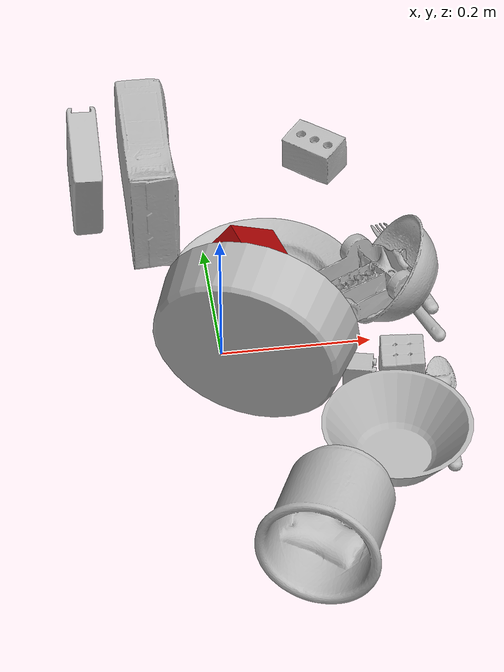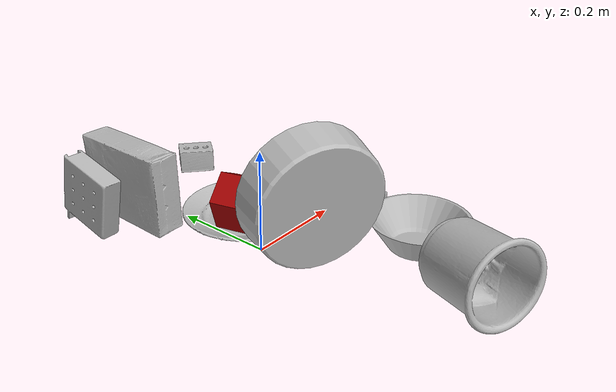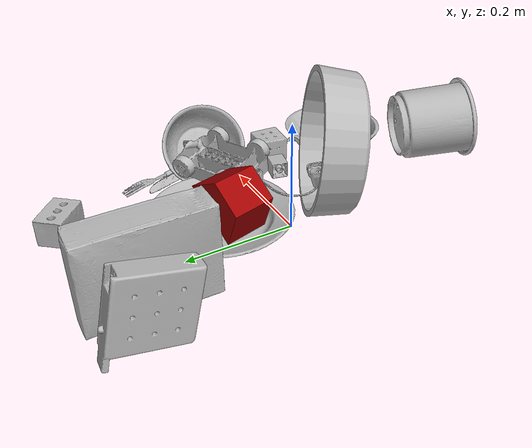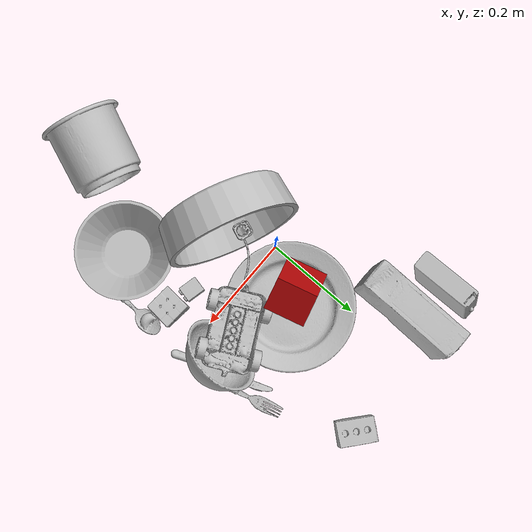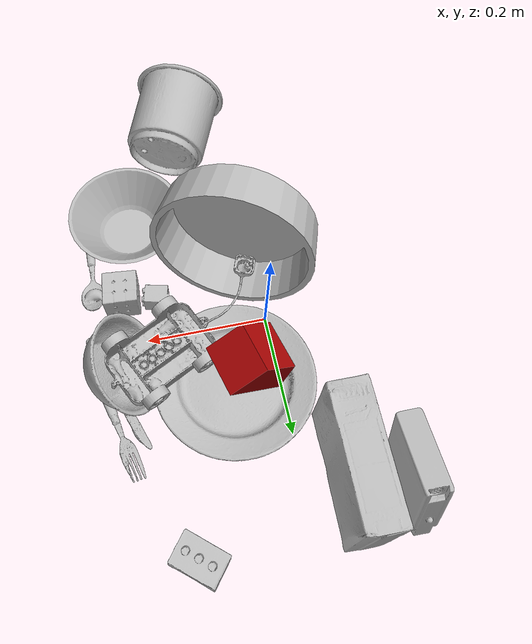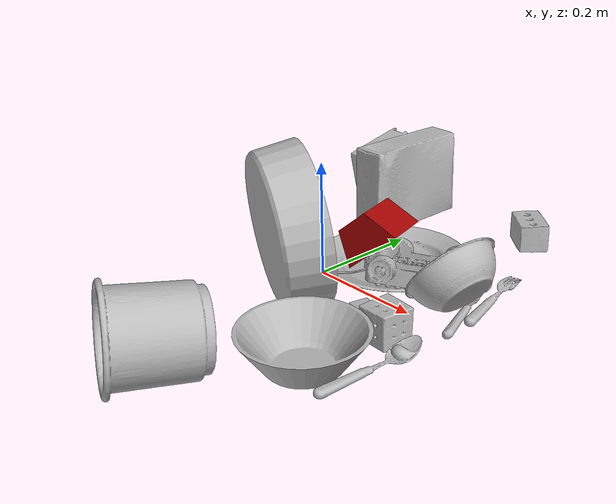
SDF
<sdf version="1.4">
  <world name="default">
    <light name="light1" type="point">
      <pose>0 0 1 0 0 0</pose>
      <diffuse>3 3 3 1</diffuse>
      <specular>3 3 3 1</specular>
    </light>
    <light name="light2" type="point">
      <pose>0 0.5 2 0 0 0</pose>
      <diffuse>1 1 1 1</diffuse>
      <specular>1 1 1 1</specular>
    </light>
    <light name="light3" type="point">
      <pose>0 0.5 2 0 0 0</pose>
      <diffuse>3 3 3 1</diffuse>
      <specular>3 3 3 1</specular>
    </light>
    <scene>
      <ambient>0.7 0.7 0.7</ambient>
    </scene>
    <model name="plate1">
      <link name="link_plate1">
        <collision name="default">
          <geometry>
            <mesh>
              <uri>model://pan_tefal/collision_meshes/collision.obj</uri>
              <scale>1.0 1.0 1.0</scale>
            </mesh>
          </geometry>
          <surface>
            <friction>
              <ode>
                <mu>0.5</mu>
                <mu2>0.5</mu2>
              </ode>
            </friction>
          <contact>
        <ode>
            <max_vel>0</max_vel>
            <min_depth>0.0001</min_depth>
            <kp>1e8</kp>
        </ode>
    </contact></surface>
        </collision>
        <visual name="default">
          <geometry>
            <mesh>
              <uri>model://pan_tefal/visual_meshes/visual.dae</uri>
              <scale>1.0 1.0 1.0</scale>
            </mesh>
          </geometry>
        </visual>
        <inertial>
          <mass>0.7575002908706665</mass>
          <pose>-0.00018002181604970247 3.278869189671241e-05 -0.00851493701338768 0.0008190213215647545 -0.0003301469994364688 -0.3318472895374236</pose>
          <inertia>
            <ixx>0.0052289874</ixx>
            <iyy>0.0052627004</iyy>
            <izz>0.009625561</izz>
            <ixy>0</ixy>
            <ixz>0</ixz>
            <iyz>0</iyz>
          </inertia>
        </inertial>
      </link>
      <pose>0.029616579413414 -0.09832875430583954 0.1282116323709488 1.4658784548429213 -1.3958521117650909e-05 2.7017955802354274</pose>
    </model>
    <model name="plate2">
      <link name="link_plate2">
        <collision name="default">
          <geometry>
            <mesh>
              <uri>model://plate/collision_meshes/collision.obj</uri>
              <scale>1.0 1.0 1.0</scale>
            </mesh>
          </geometry>
          <surface>
            <friction>
              <ode>
                <mu>0.5</mu>
                <mu2>0.5</mu2>
              </ode>
            </friction>
          <contact>
        <ode>
            <max_vel>0</max_vel>
            <min_depth>0.0001</min_depth>
            <kp>1e8</kp>
        </ode>
    </contact></surface>
        </collision>
        <visual name="default">
          <geometry>
            <mesh>
              <uri>model://plate/visual_meshes/visual.dae</uri>
              <scale>1.0 1.0 1.0</scale>
            </mesh>
          </geometry>
        </visual>
        <inertial>
          <mass>0.24305373430252075</mass>
          <pose>-0.0006044657784514129 0.0002782582014333457 -0.0010561988456174731 0.0022187349237576767 -0.0032255124479001144 0.4526250186623527</pose>
          <inertia>
            <ixx>0.00113701</ixx>
            <iyy>0.0011261352</iyy>
            <izz>0.0022238225</izz>
            <ixy>0</ixy>
            <ixz>0</ixz>
            <iyz>0</iyz>
          </inertia>
        </inertial>
      </link>
      <pose>0.0726889967918396 0.1009591668844223 0.013734308071434498 -2.3301696777451583e-05 -3.63865977445106e-05 1.021201799699381</pose>
    </model>
    <model name="bowl1">
      <link name="link_bowl1">
        <collision name="default">
          <geometry>
            <mesh>
              <uri>model://bowl/collision_meshes/collision.obj</uri>
              <scale>1.0 1.0 1.0</scale>
            </mesh>
          </geometry>
          <surface>
            <friction>
              <ode>
                <mu>0.5</mu>
                <mu2>0.5</mu2>
              </ode>
            </friction>
          <contact>
        <ode>
            <max_vel>0</max_vel>
            <min_depth>0.0001</min_depth>
            <kp>1e8</kp>
        </ode>
    </contact></surface>
        </collision>
        <visual name="default">
          <geometry>
            <mesh>
              <uri>model://bowl/visual_meshes/visual.dae</uri>
              <scale>1.0 1.0 1.0</scale>
            </mesh>
          </geometry>
        </visual>
        <inertial>
          <mass>0.08028676360845566</mass>
          <pose>0.00020445045083761215 -0.0010302026057615876 -0.0008042661938816309 -0.015764207515600946 0.014546645366850262 0.7140316236369888</pose>
          <inertia>
            <ixx>0.00018442512</ixx>
            <iyy>0.00018030431</iyy>
            <izz>0.0003102665</izz>
            <ixy>0</ixy>
            <ixz>0</ixz>
            <iyz>0</iyz>
          </inertia>
        </inertial>
      </link>
      <pose>0.2511928379535675 0.05703181028366089 0.05597894638776779 0.9569231208461988 0.15390873988512946 -1.8372706419778075</pose>
    </model>
    <model name="bowl2">
      <link name="link_bowl2">
        <collision name="default">
          <geometry>
            <mesh>
              <uri>model://bowl_a/collision_meshes/collision.obj</uri>
              <scale>1.0 1.0 1.0</scale>
            </mesh>
          </geometry>
          <surface>
            <friction>
              <ode>
                <mu>0.5</mu>
                <mu2>0.5</mu2>
              </ode>
            </friction>
          <contact>
        <ode>
            <max_vel>0</max_vel>
            <min_depth>0.0001</min_depth>
            <kp>1e8</kp>
        </ode>
    </contact></surface>
        </collision>
        <visual name="default">
          <geometry>
            <mesh>
              <uri>model://bowl_a/visual_meshes/visual.dae</uri>
              <scale>1.0 1.0 1.0</scale>
            </mesh>
          </geometry>
        </visual>
        <inertial>
          <mass>0.2016693353652954</mass>
          <pose>0.000278673687716946 4.731108856503852e-05 -0.0013765295734629035 -0.0009805301894988984 -0.0010938186520021772 -0.19123883274053055</pose>
          <inertia>
            <ixx>0.00057416206</ixx>
            <iyy>0.000577687</iyy>
            <izz>0.0010211696</izz>
            <ixy>0</ixy>
            <ixz>0</ixz>
            <iyz>0</iyz>
          </inertia>
        </inertial>
      </link>
      <pose>0.20126578211784363 -0.2171809822320938 0.03038301132619381 -4.6673217676179404e-08 -1.9807721267057095e-08 -2.77705394976149</pose>
    </model>
    <model name="silverware1">
      <link name="link_silverware1">
        <collision name="default">
          <geometry>
            <mesh>
              <uri>model://spoon/collision_meshes/collision.obj</uri>
              <scale>1.0 1.0 1.0</scale>
            </mesh>
          </geometry>
          <surface>
            <friction>
              <ode>
                <mu>0.5</mu>
                <mu2>0.5</mu2>
              </ode>
            </friction>
          <contact>
        <ode>
            <max_vel>0</max_vel>
            <min_depth>0.0001</min_depth>
            <kp>1e8</kp>
        </ode>
    </contact></surface>
        </collision>
        <visual name="default">
          <geometry>
            <mesh>
              <uri>model://spoon/visual_meshes/visual.dae</uri>
              <scale>1.0 1.0 1.0</scale>
            </mesh>
          </geometry>
        </visual>
        <inertial>
          <mass>0.023438503965735435</mass>
          <pose>-0.005526317749172449 -0.0016034176805987954 -0.000727164966519922 0.03521671071703309 -0.03906584129558259 0.006150610048623938</pose>
          <inertia>
            <ixx>1.3036873e-06</ixx>
            <iyy>8.918272e-05</iyy>
            <izz>8.982564e-05</izz>
            <ixy>0</ixy>
            <ixz>0</ixz>
            <iyz>0</iyz>
          </inertia>
        </inertial>
      </link>
      <pose>0.27429547905921936 -0.16060128808021545 0.008412981405854225 0.013921225364073184 0.026071646135533425 1.5275828914486729</pose>
    </model>
    <model name="box1">
      <link name="link_box1">
        <collision name="default">
          <geometry>
            <mesh>
              <uri>model://cracker_box/collision_meshes/collision.obj</uri>
              <scale>1.0 1.0 1.0</scale>
            </mesh>
          </geometry>
          <surface>
            <friction>
              <ode>
                <mu>0.5</mu>
                <mu2>0.5</mu2>
              </ode>
            </friction>
          <contact>
        <ode>
            <max_vel>0</max_vel>
            <min_depth>0.0001</min_depth>
            <kp>1e8</kp>
        </ode>
    </contact></surface>
        </collision>
        <visual name="default">
          <geometry>
            <mesh>
              <uri>model://cracker_box/visual_meshes/visual.dae</uri>
              <scale>1.0 1.0 1.0</scale>
            </mesh>
          </geometry>
        </visual>
        <inertial>
          <mass>3.1733922958374023</mass>
          <pose>0.0009464119793847203 0.00025434247800149024 -0.0017029535956680775 -0.00031620768891544627 -0.011106485874643508 0.0025467963987026074</pose>
          <inertia>
            <ixx>0.008071693</ixx>
            <iyy>0.013327951</iyy>
            <izz>0.01902021</izz>
            <ixy>0</ixy>
            <ixz>0</ixz>
            <iyz>0</iyz>
          </inertia>
        </inertial>
      </link>
      <pose>-0.06443669646978378 0.2808527648448944 0.08175769448280334 1.545233152259567 0.00904030209364707 1.5623242656053486</pose>
    </model>
    <model name="box2">
      <link name="link_box2">
        <collision name="default">
          <geometry>
            <mesh>
              <uri>model://rubiks_cube/collision_meshes/collision.obj</uri>
              <scale>1.0 1.0 1.0</scale>
            </mesh>
          </geometry>
          <surface>
            <friction>
              <ode>
                <mu>0.5</mu>
                <mu2>0.5</mu2>
              </ode>
            </friction>
          <contact>
        <ode>
            <max_vel>0</max_vel>
            <min_depth>0.0001</min_depth>
            <kp>1e8</kp>
        </ode>
    </contact></surface>
        </collision>
        <visual name="default">
          <geometry>
            <mesh>
              <uri>model://rubiks_cube/visual_meshes/visual.dae</uri>
              <scale>1.0 1.0 1.0</scale>
            </mesh>
          </geometry>
        </visual>
        <inertial>
          <mass>0.15184316039085388</mass>
          <pose>2.6721041649580002e-05 5.2569666877388954e-05 -7.264316536748083e-06 -0.0546734747968529 -0.09813870099197174 -0.03445517010401606</pose>
          <inertia>
            <ixx>8.390353e-05</ixx>
            <iyy>8.351226e-05</iyy>
            <izz>8.459882e-05</izz>
            <ixy>0</ixy>
            <ixz>0</ixz>
            <iyz>0</iyz>
          </inertia>
        </inertial>
      </link>
      <pose>0.2300747185945511 -0.08142038434743881 0.029273368418216705 1.5698614826678339 -0.02168051623397872 -0.08315468038577167</pose>
    </model>
    <model name="cup1">
      <link name="link_cup1">
        <collision name="default">
          <geometry>
            <mesh>
              <uri>model://f_cups/collision_meshes/collision.obj</uri>
              <scale>2.0 2.0 2.0</scale>
            </mesh>
          </geometry>
          <surface>
            <friction>
              <ode>
                <mu>0.5</mu>
                <mu2>0.5</mu2>
              </ode>
            </friction>
          <contact>
        <ode>
            <max_vel>0</max_vel>
            <min_depth>0.0001</min_depth>
            <kp>1e8</kp>
        </ode>
    </contact></surface>
        </collision>
        <visual name="default">
          <geometry>
            <mesh>
              <uri>model://f_cups/visual_meshes/visual.dae</uri>
              <scale>2.0 2.0 2.0</scale>
            </mesh>
          </geometry>
        </visual>
        <inertial>
          <mass>0.31799542903900146</mass>
          <pose>-0.006342939101159573 -0.0012480145087465644 -0.00731107359752059 0.7862267301708457 -0.2607925342729672 -0.18237300859269054</pose>
          <inertia>
            <ixx>0.0011956966</ixx>
            <iyy>0.0012542997</iyy>
            <izz>0.001305761</izz>
            <ixy>0</ixy>
            <ixz>0</ixz>
            <iyz>0</iyz>
          </inertia>
        </inertial>
      </link>
      <pose>0.09083976596593857 -0.3842121660709381 0.07454732060432434 1.1887135039179548 -1.3189196702940267 -0.027829842274196635</pose>
    </model>
    <model name="silverware2">
      <link name="link_silverware2">
        <collision name="default">
          <geometry>
            <mesh>
              <uri>model://knife/collision_meshes/collision.obj</uri>
              <scale>1.0 1.0 1.0</scale>
            </mesh>
          </geometry>
          <surface>
            <friction>
              <ode>
                <mu>0.5</mu>
                <mu2>0.5</mu2>
              </ode>
            </friction>
          <contact>
        <ode>
            <max_vel>0</max_vel>
            <min_depth>0.0001</min_depth>
            <kp>1e8</kp>
        </ode>
    </contact></surface>
        </collision>
        <visual name="default">
          <geometry>
            <mesh>
              <uri>model://knife/visual_meshes/visual.dae</uri>
              <scale>1.0 1.0 1.0</scale>
            </mesh>
          </geometry>
        </visual>
        <inertial>
          <mass>0.01713745854794979</mass>
          <pose>-0.02378525771200657 0.0015275123296305537 5.062021591584198e-05 0.07305753061421462 0.017248419855317693 -0.007409818535045194</pose>
          <inertia>
            <ixx>4.864306e-07</ixx>
            <iyy>6.583934e-05</iyy>
            <izz>6.5996e-05</izz>
            <ixy>0</ixy>
            <ixz>0</ixz>
            <iyz>0</iyz>
          </inertia>
        </inertial>
      </link>
      <pose>0.25995010137557983 0.08087869733572006 0.008560454472899437 -0.6001837456066373 0.0023828734926735107 1.911383808635299</pose>
    </model>
    <model name="silverware3">
      <link name="link_silverware3">
        <collision name="default">
          <geometry>
            <mesh>
              <uri>model://fork/collision_meshes/collision.obj</uri>
              <scale>1.0 1.0 1.0</scale>
            </mesh>
          </geometry>
          <surface>
            <friction>
              <ode>
                <mu>0.5</mu>
                <mu2>0.5</mu2>
              </ode>
            </friction>
          <contact>
        <ode>
            <max_vel>0</max_vel>
            <min_depth>0.0001</min_depth>
            <kp>1e8</kp>
        </ode>
    </contact></surface>
        </collision>
        <visual name="default">
          <geometry>
            <mesh>
              <uri>model://fork/visual_meshes/visual.dae</uri>
              <scale>1.0 1.0 1.0</scale>
            </mesh>
          </geometry>
        </visual>
        <inertial>
          <mass>0.012323527596890926</mass>
          <pose>-0.029570043087005615 0.00046588233090005815 0.0003218861238565296 -0.013551145261099908 -0.01097783717976447 0.01445390335153306</pose>
          <inertia>
            <ixx>4.3200933e-07</ixx>
            <iyy>3.2173175e-05</iyy>
            <izz>3.236641e-05</izz>
            <ixy>0</ixy>
            <ixz>0</ixz>
            <iyz>0</iyz>
          </inertia>
        </inertial>
      </link>
      <pose>0.2686310112476349 0.1283210813999176 0.007446604780852795 -3.06349916140615 0.002835924699045295 1.81758300008306</pose>
    </model>
    <model name="toy1">
      <link name="link_toy1">
        <collision name="default">
          <geometry>
            <mesh>
              <uri>model://foam_brick/collision_meshes/collision.obj</uri>
              <scale>1.0 1.0 1.0</scale>
            </mesh>
          </geometry>
          <surface>
            <friction>
              <ode>
                <mu>0.5</mu>
                <mu2>0.5</mu2>
              </ode>
            </friction>
          <contact>
        <ode>
            <max_vel>0</max_vel>
            <min_depth>0.0001</min_depth>
            <kp>1e8</kp>
        </ode>
    </contact></surface>
        </collision>
        <visual name="default">
          <geometry>
            <mesh>
              <uri>model://foam_brick/visual_meshes/visual.dae</uri>
              <scale>1.0 1.0 1.0</scale>
            </mesh>
          </geometry>
        </visual>
        <inertial>
          <mass>0.22379855811595917</mass>
          <pose>-0.00025224717683158815 0.0003458436403889209 -0.0002532101352699101 -0.29401565582258504 0.017274431815567964 -0.0007449878256007176</pose>
          <inertia>
            <ixx>9.775939e-05</ixx>
            <iyy>0.00015607789</iyy>
            <izz>0.00015806146</izz>
            <ixy>0</ixy>
            <ixz>0</ixz>
            <iyz>0</iyz>
          </inertia>
        </inertial>
      </link>
      <pose>0.17594733834266663 0.35531288385391235 0.02592281810939312 0.013417049598657712 0.0041529311871998315 -0.6936353603007247</pose>
    </model>
    <model name="toy2">
      <link name="link_toy2">
        <collision name="default">
          <geometry>
            <mesh>
              <uri>model://g_lego_duplo/collision_meshes/collision.obj</uri>
              <scale>1.0 1.0 1.0</scale>
            </mesh>
          </geometry>
          <surface>
            <friction>
              <ode>
                <mu>0.5</mu>
                <mu2>0.5</mu2>
              </ode>
            </friction>
          <contact>
        <ode>
            <max_vel>0</max_vel>
            <min_depth>0.0001</min_depth>
            <kp>1e8</kp>
        </ode>
    </contact></surface>
        </collision>
        <visual name="default">
          <geometry>
            <mesh>
              <uri>model://g_lego_duplo/visual_meshes/visual.dae</uri>
              <scale>1.0 1.0 1.0</scale>
            </mesh>
          </geometry>
        </visual>
        <inertial>
          <mass>0.5124852657318115</mass>
          <pose>-0.05004769191145897 0.0017554633086547256 0.003880675183609128 0.010962987419080987 0.0381082502855883 -0.09653031806986456</pose>
          <inertia>
            <ixx>0.0007425969</ixx>
            <iyy>0.0022451086</iyy>
            <izz>0.0028087152</izz>
            <ixy>0</ixy>
            <ixz>0</ixz>
            <iyz>0</iyz>
          </inertia>
        </inertial>
      </link>
      <pose>0.1291220337152481 0.015879912301898003 0.05653989315032959 -2.9953708860075556 0.0007539147116392547 -2.664550341452898</pose>
    </model>
    <model name="toy3">
      <link name="link_toy3">
        <collision name="default">
          <geometry>
            <mesh>
              <uri>model://nine_hole_peg_test/collision_meshes/collision.obj</uri>
              <scale>1.0 1.0 1.0</scale>
            </mesh>
          </geometry>
          <surface>
            <friction>
              <ode>
                <mu>0.5</mu>
                <mu2>0.5</mu2>
              </ode>
            </friction>
          <contact>
        <ode>
            <max_vel>0</max_vel>
            <min_depth>0.0001</min_depth>
            <kp>1e8</kp>
        </ode>
    </contact></surface>
        </collision>
        <visual name="default">
          <geometry>
            <mesh>
              <uri>model://nine_hole_peg_test/visual_meshes/visual.dae</uri>
              <scale>1.0 1.0 1.0</scale>
            </mesh>
          </geometry>
        </visual>
        <inertial>
          <mass>0.8364987969398499</mass>
          <pose>-0.004617386497557163 -0.009647614322602749 2.6460691515239887e-05 -0.0014666793226822761 0.000719418076932787 -0.634241593386854</pose>
          <inertia>
            <ixx>0.0013080036</ixx>
            <iyy>0.0012212693</iyy>
            <izz>0.0022920077</izz>
            <ixy>0</ixy>
            <ixz>0</ixz>
            <iyz>0</iyz>
          </inertia>
        </inertial>
      </link>
      <pose>-0.14989128708839417 0.31037914752960205 0.06649702787399292 -1.5581291932230832 -0.21883653313498483 1.5497516574001238</pose>
    </model>
    <model name="toy4">
      <link name="link_toy4">
        <collision name="default">
          <geometry>
            <mesh>
              <uri>model://b_lego_duplo/collision_meshes/collision.obj</uri>
              <scale>1.0 1.0 1.0</scale>
            </mesh>
          </geometry>
          <surface>
            <friction>
              <ode>
                <mu>0.5</mu>
                <mu2>0.5</mu2>
              </ode>
            </friction>
          <contact>
        <ode>
            <max_vel>0</max_vel>
            <min_depth>0.0001</min_depth>
            <kp>1e8</kp>
        </ode>
    </contact></surface>
        </collision>
        <visual name="default">
          <geometry>
            <mesh>
              <uri>model://b_lego_duplo/visual_meshes/visual.dae</uri>
              <scale>1.0 1.0 1.0</scale>
            </mesh>
          </geometry>
        </visual>
        <inertial>
          <mass>0.0316849946975708</mass>
          <pose>-0.00011053055641241372 -9.15226701181382e-06 0.0019294292433187366 -0.03749472548528336 -0.026354304906346077 0.4518915128408031</pose>
          <inertia>
            <ixx>6.4845735e-06</ixx>
            <iyy>6.5281647e-06</iyy>
            <izz>5.777544e-06</izz>
            <ixy>0</ixy>
            <ixz>0</ixz>
            <iyz>0</iyz>
          </inertia>
        </inertial>
      </link>
      <pose>0.17545941472053528 -0.07031149417161942 0.016180068254470825 0.04820320665608349 -1.5624183579210633 2.8690639904296984</pose>
    </model>
    <model name="toy5">
      <link name="link_toy5">
        <collision name="default">
          <geometry>
            <mesh>
              <uri>model://prism/collision_meshes/collision.obj</uri>
              <scale>1.0 1.0 1.0</scale>
            </mesh>
          </geometry>
          <surface>
            <friction>
              <ode>
                <mu>0.5</mu>
                <mu2>0.5</mu2>
              </ode>
            </friction>
          <contact>
        <ode>
            <max_vel>0</max_vel>
            <min_depth>0.0001</min_depth>
            <kp>1e8</kp>
        </ode>
    </contact></surface>
        </collision>
        <visual name="default">
          <geometry>
            <mesh>
              <uri>model://prism/visual_meshes/visual.dae</uri>
              <scale>1.0 1.0 1.0</scale>
            </mesh>
          </geometry>
        </visual>
        <inertial>
          <mass>0.34586653113365173</mass>
          <pose>-9.853597293840721e-05 -4.96157269935793e-07 -0.0033869100734591484 0.0 0.006559180766136186 0.0</pose>
          <inertia>
            <ixx>0.00031214024</ixx>
            <iyy>0.00037722557</iyy>
            <izz>0.00046205617</izz>
            <ixy>0</ixy>
            <ixz>0</ixz>
            <iyz>0</iyz>
          </inertia>
        </inertial>
      </link>
      <pose>0.0366811640560627 0.08685005456209183 0.06652825325727463 9.982140607927417e-07 0.7179268658071412 -2.878853505125708</pose>
    </model>
  <physics type="ode">
      <max_contacts>50</max_contacts>
      <ode>
        <solver>
          <type>quick</type>
          <iters>75</iters>
        </solver>
        <constraints>
          <contact_max_correcting_vel>0</contact_max_correcting_vel>
          <contact_surface_layer>0</contact_surface_layer>
        </constraints>
      </ode>
    </physics></world>
</sdf>
